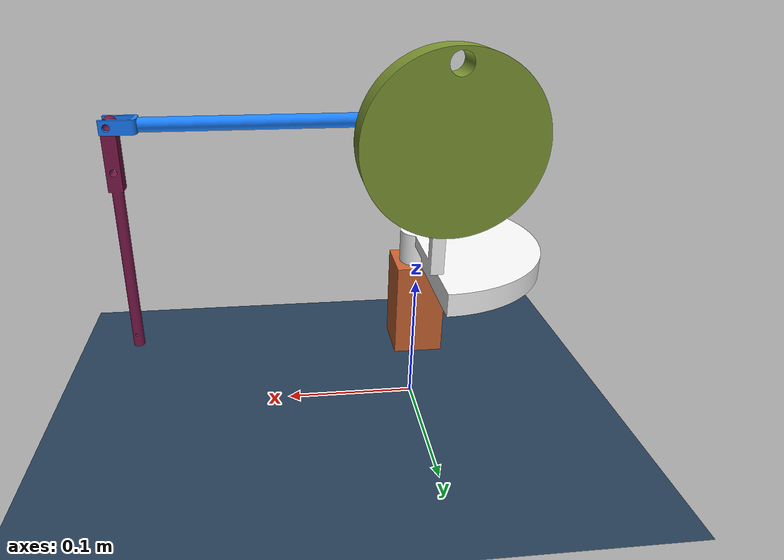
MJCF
<mujoco model="3_link_robot">
    <!-- Compiler settings -->
    <compiler angle="degree" />
    <option timestep="0.001" gravity="0 0 0" />

    <!-- Asset: Mesh definitions -->
    <asset>
        <mesh name="Base" file="meshes/Base.stl" scale="0.001 0.001 0.001" />
        <mesh name="BottomCircle" file="meshes/BottomCircle.stl" scale="0.001 0.001 0.001" />
        <mesh name="FullCircle" file="meshes/FullCircle.stl" scale="0.001 0.001 0.001" />
        <mesh name="TopStick" file="meshes/TopStick.stl" scale="0.001 0.001 0.001" />
        <mesh name="EndEffector" file="meshes/EndEffector.stl" scale="0.001 0.001 0.001" />
        <mesh name="Pin" file="meshes/Pin.stl" scale="0.001 0.001 0.001" />

        <texture type="skybox" builtin="gradient" rgb1="0.3 0.5 0.7" rgb2="0 0 0" width="512"
            height="3072" />
        <texture type="2d" name="groundplane" builtin="checker" mark="edge" rgb1="0.2 0.3 0.4"
            rgb2="0.1 0.2 0.3"
            markrgb="0.8 0.8 0.8" width="300" height="300" />
        <material name="groundplane" texture="groundplane" texuniform="true" texrepeat="5 5"
            reflectance="0.2" />
    </asset>

    <!-- World settings -->
    <worldbody>
        <!-- Ground plane -->
        <geom name="floor" size="0 0 0.05" type="plane" material="groundplane" condim="1" />
        <camera name="PerspectiveCamera" mode="fixed" pos="0 0 6" euler="0 -20 90" />

        <!-- Base body -->
        <body name="BASE" pos="0 0 0.05" euler="0 0 0">
            <geom name="GB" type="mesh" contype="0" conaffinity="0" mesh="Base" rgba="0.8 0.4 0.2 1" />

            <body name="BOTTOMCIRCLE" pos="0 0 0.07" euler="0 0 0">
                <geom name="GBC" type="mesh" mesh="BottomCircle" rgba="1 1 1 1" condim="1"
                    contype="0" conaffinity="0" />
                <joint name="jointBC" type="hinge" pos="0 0 0" axis="0 0 1" damping="0.8"
                    stiffness="10" limited="true" range="-90 90" />

                <!-- (FULLCIRCLE) -->
                <body name="FULLCIRCLE" pos="0 0.081 0.108" euler="90 0 0">
                    <geom name="GFC" type="mesh" mesh="FullCircle" rgba="0.5 0.6 0.2 1" />

                    <!-- TOP STICK  -->
                    <body name="TOPSTICK" pos="0 0.0 0.061" euler="270 0 0">
                        <geom name="GT" type="mesh" mesh="TopStick" rgba=".1 0.5 1 1" condim="1"
                            contype="0" conaffinity="0" />
                        <joint name="jointTS" type="hinge" pos="0 0 0.0" axis="0 1 0"
                            damping=".5" stiffness="10.0" />

                        <!-- END EFFECTOR -->
                        <body name="ENDEFFECTOR" pos="0.2125 -0.0175 0" euler="0 0 0">
                            <geom name="GE" type="mesh" mesh="EndEffector" rgba="0.5 0.1 0.3 1" />
                            <joint name="jointE" type="hinge" pos="0 0 0.0" axis="0 1 0"
                                damping=".1" stiffness="5.0" />
                        </body>
                    </body>
                </body>
            </body>
        </body>

        <!-- Lighting -->
        <light pos="0 0 2" dir="0 0 -1" />
        <light pos="0 1 2" dir="0 0 -1" />
        <light pos="0 -1 2" dir="0 0 -1" />
        <light pos="1 0 2" dir="0 0 -1" />
        <light pos="-1 0 2" dir="0 0 -1" />

    </worldbody>
    <!-- Equality constraint for JointS and JointSS -->

    <!-- Contact exclusions to prevent unwanted interactions -->
    <contact>
        <exclude body1="BOTTOMCIRCLE" body2="BASE" />
        <exclude body1="BOTTOMCIRCLE" body2="FULLCIRCLE" />
        <exclude body1="BOTTOMCIRCLE" body2="TOPSTICK" />
        <exclude body1="BOTTOMCIRCLE" body2="ENDEFFECTOR" />

        <exclude body1="FULLCIRCLE" body2="TOPSTICK" />
        <exclude body1="FULLCIRCLE" body2="ENDEFFECTOR" />
        <exclude body1="TOPSTICK" body2="ENDEFFECTOR" />

    </contact>
    <!-- Actuator definitions -->
    <actuator>
        <motor name="Pos1" joint="jointBC" ctrllimited="true" ctrlrange="-50 50"
            gear="1 0 0 0 0 0" />
        <motor name="Pos2" joint="jointTS" ctrllimited="true" ctrlrange="-6 5" gear="1 0 0 0 0 0" />
        <motor name="Pos3" joint="jointE" ctrllimited="true" ctrlrange="-3 3" gear="1 0 0 0 0 0" />
    </actuator>

</mujoco>
